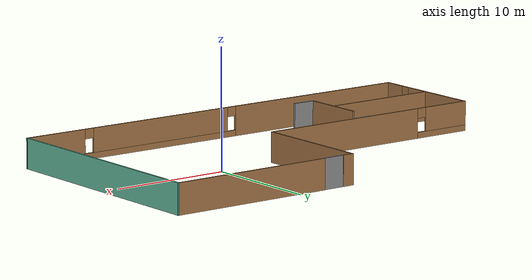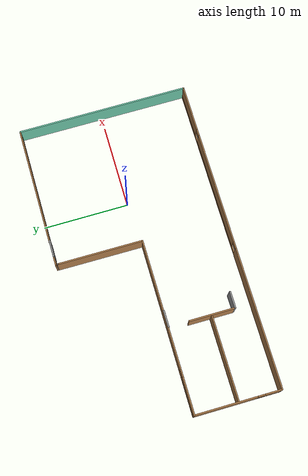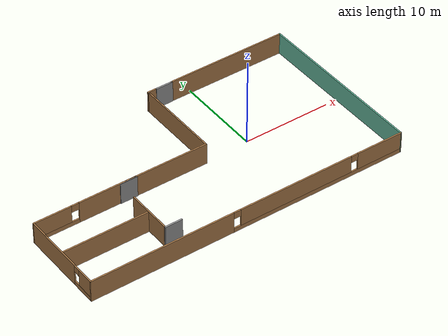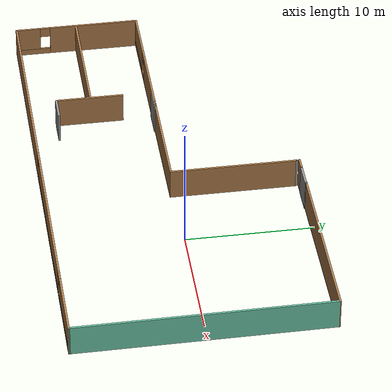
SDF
<?xml version='1.0'?>
<sdf version='1.6'>
  <model name='newbuilding'>
    <pose frame=''>-6.94481 -0.194239 0 0 -0 0</pose>
    <link name='Door_0'>
      <collision name='Door_0_Collision'>
        <geometry>
          <box>
            <size>2 0.17 2.5</size>
          </box>
        </geometry>
        <pose frame=''>0 0 1.25 0 -0 0</pose>
      </collision>
      <visual name='Door_0_Visual'>
        <pose frame=''>0 0 1.25 0 -0 0</pose>
        <geometry>
          <box>
            <size>2 0.17 2.5</size>
          </box>
        </geometry>
        <material>
          <script>
            <uri>file://media/materials/scripts/gazebo.material</uri>
            <name>Gazebo/Grey</name>
          </script>
        </material>
      </visual>
      <pose frame=''>3.6151 9.94779 0 0 -0 0</pose>
    </link>
    <link name='Door_1'>
      <collision name='Door_1_Collision'>
        <geometry>
          <box>
            <size>2 0.17 2.5</size>
          </box>
        </geometry>
        <pose frame=''>0 0 1.25 0 -0 0</pose>
      </collision>
      <visual name='Door_1_Visual'>
        <pose frame=''>0 0 1.25 0 -0 0</pose>
        <geometry>
          <box>
            <size>2 0.17 2.5</size>
          </box>
        </geometry>
        <material>
          <script>
            <uri>file://media/materials/scripts/gazebo.material</uri>
            <name>Gazebo/Grey</name>
          </script>
        </material>
      </visual>
      <pose frame=''>-7.59702 -0.168608 0 0 -0 0</pose>
    </link>
    <link name='Door_2'>
      <collision name='Door_2_Collision'>
        <geometry>
          <box>
            <size>2 0.17 2.5</size>
          </box>
        </geometry>
        <pose frame=''>0 0 1.25 0 -0 0</pose>
      </collision>
      <visual name='Door_2_Visual'>
        <pose frame=''>0 0 1.25 0 -0 0</pose>
        <geometry>
          <box>
            <size>2 0.17 2.5</size>
          </box>
        </geometry>
        <material>
          <script>
            <uri>file://media/materials/scripts/gazebo.material</uri>
            <name>Gazebo/Grey</name>
          </script>
        </material>
      </visual>
      <pose frame=''>-7.58564 -7.83645 0 0 -0 0</pose>
    </link>
    <link name='Wall_0'>
      <collision name='Wall_0_Collision'>
        <geometry>
          <box>
            <size>10 0.15 2.5</size>
          </box>
        </geometry>
        <pose frame=''>0 0 1.25 0 -0 0</pose>
      </collision>
      <visual name='Wall_0_Visual'>
        <pose frame=''>0 0 1.25 0 -0 0</pose>
        <geometry>
          <box>
            <size>10 0.15 2.5</size>
          </box>
        </geometry>
        <material>
          <script>
            <uri>file://media/materials/scripts/gazebo.material</uri>
            <name>Gazebo/Wood</name>
          </script>
          <ambient>1 1 0 1</ambient>
        </material>
        <meta>
          <layer>0</layer>
        </meta>
      </visual>
      <pose frame=''>1.67481 4.80924 0 0 -0 1.5708</pose>
    </link>
    <link name='Wall_12'>
      <collision name='Wall_12_Collision'>
        <geometry>
          <box>
            <size>14 0.15 2.5</size>
          </box>
        </geometry>
        <pose frame=''>0 0 1.25 0 -0 0</pose>
      </collision>
      <visual name='Wall_12_Visual'>
        <pose frame=''>0 0 1.25 0 -0 0</pose>
        <geometry>
          <box>
            <size>14 0.15 2.5</size>
          </box>
        </geometry>
        <material>
          <script>
            <uri>file://media/materials/scripts/gazebo.material</uri>
            <name>Gazebo/Wood</name>
          </script>
          <ambient>1 1 0 1</ambient>
        </material>
        <meta>
          <layer>0</layer>
        </meta>
      </visual>
      <pose frame=''>11.3998 9.98424 0 0 -0 3.14159</pose>
    </link>
    <link name='Wall_14'>
      <collision name='Wall_14_Collision'>
        <geometry>
          <box>
            <size>0.15 0.15 2.5</size>
          </box>
        </geometry>
        <pose frame=''>0 0 1.25 0 -0 0</pose>
      </collision>
      <visual name='Wall_14_Visual'>
        <pose frame=''>0 0 1.25 0 -0 0</pose>
        <geometry>
          <box>
            <size>0.15 0.15 2.5</size>
          </box>
        </geometry>
        <material>
          <script>
            <uri>file://media/materials/scripts/gazebo.material</uri>
            <name>Gazebo/Grey</name>
          </script>
          <ambient>1 1 1 1</ambient>
        </material>
        <meta>
          <layer>0</layer>
        </meta>
      </visual>
      <pose frame=''>1.67481 9.73424 0 0 -0 0</pose>
    </link>
    <link name='Wall_2'>
      <pose frame=''>-8.37519 -0.115761 0 0 -0 3.14159</pose>
      <visual name='Wall_2_Visual_0'>
        <pose frame=''>-2.5873 0 1.25 0 -0 0</pose>
        <geometry>
          <box>
            <size>15.0754 0.15 2.5</size>
          </box>
        </geometry>
        <material>
          <script>
            <uri>file://media/materials/scripts/gazebo.material</uri>
            <name>Gazebo/Wood</name>
          </script>
          <ambient>0.333333 1 0.498039 1</ambient>
        </material>
        <meta>
          <layer>0</layer>
        </meta>
      </visual>
      <collision name='Wall_2_Collision_0'>
        <geometry>
          <box>
            <size>15.0754 0.15 2.5</size>
          </box>
        </geometry>
        <pose frame=''>-2.5873 0 1.25 0 -0 0</pose>
      </collision>
      <visual name='Wall_2_Visual_1'>
        <pose frame=''>7.5377 0 0.25 0 -0 0</pose>
        <geometry>
          <box>
            <size>5.1746 0.15 0.5</size>
          </box>
        </geometry>
        <material>
          <script>
            <uri>file://media/materials/scripts/gazebo.material</uri>
            <name>Gazebo/Wood</name>
          </script>
          <ambient>0.333333 1 0.498039 1</ambient>
        </material>
        <meta>
          <layer>0</layer>
        </meta>
      </visual>
      <collision name='Wall_2_Collision_1'>
        <geometry>
          <box>
            <size>5.1746 0.15 0.5</size>
          </box>
        </geometry>
        <pose frame=''>7.5377 0 0.25 0 -0 0</pose>
      </collision>
      <visual name='Wall_2_Visual_2'>
        <pose frame=''>7.97308 0 1.5 0 -0 0</pose>
        <geometry>
          <box>
            <size>4.30384 0.15 2</size>
          </box>
        </geometry>
        <material>
          <script>
            <uri>file://media/materials/scripts/gazebo.material</uri>
            <name>Gazebo/Wood</name>
          </script>
          <ambient>0.333333 1 0.498039 1</ambient>
        </material>
        <meta>
          <layer>0</layer>
        </meta>
      </visual>
      <collision name='Wall_2_Collision_2'>
        <geometry>
          <box>
            <size>4.30384 0.15 2</size>
          </box>
        </geometry>
        <pose frame=''>7.97308 0 1.5 0 -0 0</pose>
      </collision>
      <visual name='Wall_2_Visual_3'>
        <pose frame=''>5.38578 0 2.1 0 -0 0</pose>
        <geometry>
          <box>
            <size>0.870757 0.15 0.8</size>
          </box>
        </geometry>
        <material>
          <script>
            <uri>file://media/materials/scripts/gazebo.material</uri>
            <name>Gazebo/Wood</name>
          </script>
          <ambient>0.333333 1 0.498039 1</ambient>
        </material>
        <meta>
          <layer>0</layer>
        </meta>
      </visual>
      <collision name='Wall_2_Collision_3'>
        <geometry>
          <box>
            <size>0.870757 0.15 0.8</size>
          </box>
        </geometry>
        <pose frame=''>5.38578 0 2.1 0 -0 0</pose>
      </collision>
    </link>
    <link name='Wall_20'>
      <collision name='Wall_20_Collision'>
        <geometry>
          <box>
            <size>1 0.15 2.5</size>
          </box>
        </geometry>
        <pose frame=''>0 0 1.25 0 -0 0</pose>
      </collision>
      <visual name='Wall_20_Visual'>
        <pose frame=''>0 0 1.25 0 -0 0</pose>
        <geometry>
          <box>
            <size>1 0.15 2.5</size>
          </box>
        </geometry>
        <material>
          <script>
            <uri>file://media/materials/scripts/gazebo.material</uri>
            <name>Gazebo/Wood</name>
          </script>
          <ambient>1 1 0 1</ambient>
        </material>
        <meta>
          <layer>0</layer>
        </meta>
      </visual>
      <pose frame=''>2.09333 9.9624 0 0 -0 0</pose>
    </link>
    <link name='Wall_3'>
      <pose frame=''>-18.4252 -5.02325 0 0 0 -1.5708</pose>
      <visual name='Wall_3_Visual_0'>
        <pose frame=''>-1.37105 0 1.25 0 -0 0</pose>
        <geometry>
          <box>
            <size>7.22287 0.15 2.5</size>
          </box>
        </geometry>
        <material>
          <script>
            <uri>file://media/materials/scripts/gazebo.material</uri>
            <name>Gazebo/Wood</name>
          </script>
          <ambient>0.333333 1 0.498039 1</ambient>
        </material>
        <meta>
          <layer>0</layer>
        </meta>
      </visual>
      <collision name='Wall_3_Collision_0'>
        <geometry>
          <box>
            <size>7.22287 0.15 2.5</size>
          </box>
        </geometry>
        <pose frame=''>-1.37105 0 1.25 0 -0 0</pose>
      </collision>
      <visual name='Wall_3_Visual_1'>
        <pose frame=''>3.61144 0 0.25 0 -0 0</pose>
        <geometry>
          <box>
            <size>2.7421 0.15 0.5</size>
          </box>
        </geometry>
        <material>
          <script>
            <uri>file://media/materials/scripts/gazebo.material</uri>
            <name>Gazebo/Wood</name>
          </script>
          <ambient>0.333333 1 0.498039 1</ambient>
        </material>
        <meta>
          <layer>0</layer>
        </meta>
      </visual>
      <collision name='Wall_3_Collision_1'>
        <geometry>
          <box>
            <size>2.7421 0.15 0.5</size>
          </box>
        </geometry>
        <pose frame=''>3.61144 0 0.25 0 -0 0</pose>
      </collision>
      <visual name='Wall_3_Visual_2'>
        <pose frame=''>4.01144 0 1.5 0 -0 0</pose>
        <geometry>
          <box>
            <size>1.9421 0.15 2</size>
          </box>
        </geometry>
        <material>
          <script>
            <uri>file://media/materials/scripts/gazebo.material</uri>
            <name>Gazebo/Wood</name>
          </script>
          <ambient>0.333333 1 0.498039 1</ambient>
        </material>
        <meta>
          <layer>0</layer>
        </meta>
      </visual>
      <collision name='Wall_3_Collision_2'>
        <geometry>
          <box>
            <size>1.9421 0.15 2</size>
          </box>
        </geometry>
        <pose frame=''>4.01144 0 1.5 0 -0 0</pose>
      </collision>
      <visual name='Wall_3_Visual_3'>
        <pose frame=''>2.64038 0 2.1 0 -0 0</pose>
        <geometry>
          <box>
            <size>0.8 0.15 0.8</size>
          </box>
        </geometry>
        <material>
          <script>
            <uri>file://media/materials/scripts/gazebo.material</uri>
            <name>Gazebo/Wood</name>
          </script>
          <ambient>0.333333 1 0.498039 1</ambient>
        </material>
        <meta>
          <layer>0</layer>
        </meta>
      </visual>
      <collision name='Wall_3_Collision_3'>
        <geometry>
          <box>
            <size>0.8 0.15 0.8</size>
          </box>
        </geometry>
        <pose frame=''>2.64038 0 2.1 0 -0 0</pose>
      </collision>
    </link>
    <link name='Wall_4'>
      <pose frame=''>-0.000187 -9.98424 0 0 -0 0</pose>
      <visual name='Wall_4_Visual_0'>
        <pose frame=''>-10.2807 0 1.25 0 -0 0</pose>
        <geometry>
          <box>
            <size>16.4387 0.15 2.5</size>
          </box>
        </geometry>
        <material>
          <script>
            <uri>file://media/materials/scripts/gazebo.material</uri>
            <name>Gazebo/Wood</name>
          </script>
          <ambient>1 1 0 1</ambient>
        </material>
        <meta>
          <layer>0</layer>
        </meta>
      </visual>
      <collision name='Wall_4_Collision_0'>
        <geometry>
          <box>
            <size>16.4387 0.15 2.5</size>
          </box>
        </geometry>
        <pose frame=''>-10.2807 0 1.25 0 -0 0</pose>
      </collision>
      <visual name='Wall_4_Visual_1'>
        <pose frame=''>8.21934 0 0.25 0 -0 0</pose>
        <geometry>
          <box>
            <size>20.5613 0.15 0.5</size>
          </box>
        </geometry>
        <material>
          <script>
            <uri>file://media/materials/scripts/gazebo.material</uri>
            <name>Gazebo/Wood</name>
          </script>
          <ambient>1 1 0 1</ambient>
        </material>
        <meta>
          <layer>0</layer>
        </meta>
      </visual>
      <collision name='Wall_4_Collision_1'>
        <geometry>
          <box>
            <size>20.5613 0.15 0.5</size>
          </box>
        </geometry>
        <pose frame=''>8.21934 0 0.25 0 -0 0</pose>
      </collision>
      <visual name='Wall_4_Visual_2'>
        <pose frame=''>5.44976 0 1.5 0 -0 0</pose>
        <geometry>
          <box>
            <size>13.4222 0.15 2</size>
          </box>
        </geometry>
        <material>
          <script>
            <uri>file://media/materials/scripts/gazebo.material</uri>
            <name>Gazebo/Wood</name>
          </script>
          <ambient>1 1 0 1</ambient>
        </material>
        <meta>
          <layer>0</layer>
        </meta>
      </visual>
      <collision name='Wall_4_Collision_2'>
        <geometry>
          <box>
            <size>13.4222 0.15 2</size>
          </box>
        </geometry>
        <pose frame=''>5.44976 0 1.5 0 -0 0</pose>
      </collision>
      <visual name='Wall_4_Visual_3'>
        <pose frame=''>15.7304 0 1.5 0 -0 0</pose>
        <geometry>
          <box>
            <size>5.53915 0.15 2</size>
          </box>
        </geometry>
        <material>
          <script>
            <uri>file://media/materials/scripts/gazebo.material</uri>
            <name>Gazebo/Wood</name>
          </script>
          <ambient>1 1 0 1</ambient>
        </material>
        <meta>
          <layer>0</layer>
        </meta>
      </visual>
      <collision name='Wall_4_Collision_3'>
        <geometry>
          <box>
            <size>5.53915 0.15 2</size>
          </box>
        </geometry>
        <pose frame=''>15.7304 0 1.5 0 -0 0</pose>
      </collision>
      <visual name='Wall_4_Visual_4'>
        <pose frame=''>-1.66132 0 2.1 0 -0 0</pose>
        <geometry>
          <box>
            <size>0.8 0.15 0.8</size>
          </box>
        </geometry>
        <material>
          <script>
            <uri>file://media/materials/scripts/gazebo.material</uri>
            <name>Gazebo/Wood</name>
          </script>
          <ambient>1 1 0 1</ambient>
        </material>
        <meta>
          <layer>0</layer>
        </meta>
      </visual>
      <collision name='Wall_4_Collision_4'>
        <geometry>
          <box>
            <size>0.8 0.15 0.8</size>
          </box>
        </geometry>
        <pose frame=''>-1.66132 0 2.1 0 -0 0</pose>
      </collision>
      <visual name='Wall_4_Visual_5'>
        <pose frame=''>12.5608 0 2.1 0 -0 0</pose>
        <geometry>
          <box>
            <size>0.8 0.15 0.8</size>
          </box>
        </geometry>
        <material>
          <script>
            <uri>file://media/materials/scripts/gazebo.material</uri>
            <name>Gazebo/Wood</name>
          </script>
          <ambient>1 1 0 1</ambient>
        </material>
        <meta>
          <layer>0</layer>
        </meta>
      </visual>
      <collision name='Wall_4_Collision_5'>
        <geometry>
          <box>
            <size>0.8 0.15 0.8</size>
          </box>
        </geometry>
        <pose frame=''>12.5608 0 2.1 0 -0 0</pose>
      </collision>
    </link>
    <link name='Wall_40'>
      <collision name='Wall_40_Collision'>
        <geometry>
          <box>
            <size>5.25 0.15 2.5</size>
          </box>
        </geometry>
        <pose frame=''>0 0 1.25 0 -0 0</pose>
      </collision>
      <visual name='Wall_40_Visual'>
        <pose frame=''>0 0 1.25 0 -0 0</pose>
        <geometry>
          <box>
            <size>5.25 0.15 2.5</size>
          </box>
        </geometry>
        <material>
          <script>
            <uri>file://media/materials/scripts/gazebo.material</uri>
            <name>Gazebo/Wood</name>
          </script>
          <ambient>1 1 1 1</ambient>
        </material>
        <meta>
          <layer>0</layer>
        </meta>
      </visual>
      <pose frame=''>-8.54322 -5.11363 0 0 -0 1.5708</pose>
    </link>
    <link name='Wall_44'>
      <collision name='Wall_44_Collision'>
        <geometry>
          <box>
            <size>9.75 0.15 2.5</size>
          </box>
        </geometry>
        <pose frame=''>0 0 1.25 0 -0 0</pose>
      </collision>
      <visual name='Wall_44_Visual'>
        <pose frame=''>0 0 1.25 0 -0 0</pose>
        <geometry>
          <box>
            <size>9.75 0.15 2.5</size>
          </box>
        </geometry>
        <material>
          <script>
            <uri>file://media/materials/scripts/gazebo.material</uri>
            <name>Gazebo/Wood</name>
          </script>
          <ambient>1 1 1 1</ambient>
        </material>
        <meta>
          <layer>0</layer>
        </meta>
      </visual>
      <pose frame=''>-13.5132 -5.10482 0 0 -0 0</pose>
    </link>
    <link name='Wall_46'>
      <collision name='Wall_46_Collision'>
        <geometry>
          <box>
            <size>20.1187 0.15 2.5</size>
          </box>
        </geometry>
        <pose frame=''>0 0 1.25 0 -0 0</pose>
      </collision>
      <visual name='Wall_46_Visual'>
        <pose frame=''>0 0 1.25 0 -0 0</pose>
        <geometry>
          <box>
            <size>20.1187 0.15 2.5</size>
          </box>
        </geometry>
        <material>
          <script>
            <uri>file://media/materials/scripts/gazebo.material</uri>
            <name>Gazebo/Grey</name>
          </script>
          <ambient>0.435294 0.796078 0.67451 1</ambient>
        </material>
        <meta>
          <layer>0</layer>
        </meta>
      </visual>
      <pose frame=''>18.3748 0 0 0 0 -1.56579</pose>
    </link>
    <static>1</static>
  </model>
</sdf>
